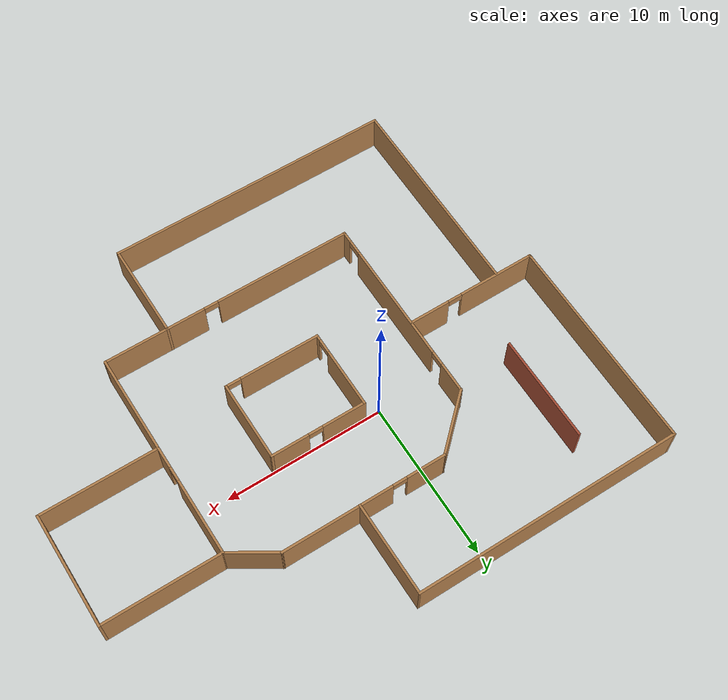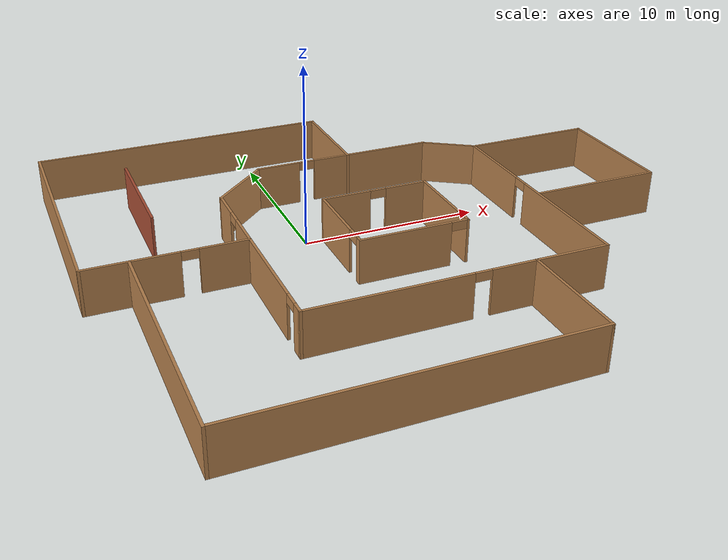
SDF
<?xml version='1.0'?>
<sdf version='1.7'>
  <model name='rs1_floor_plan_2'>
    <pose>3.48266 -2.61019 0 0 -0 0</pose>
    <link name='Wall_1'>
      <pose>8.51734 -0.714811 0 0 -0 -1.5708</pose>
      <visual name='Wall_1_Visual_0'>
        <pose>-4.28666 0 1.25 0 -0 0</pose>
        <geometry>
          <box>
            <size>4.92668 0.15 2.5</size>
          </box>
        </geometry>
        <material>
          <script>
            <uri>file://media/materials/scripts/gazebo.material</uri>
            <name>Gazebo/Wood</name>
          </script>
          <ambient>1 1 1 1</ambient>
        </material>
        <meta>
          <layer>0</layer>
        </meta>
      </visual>
      <collision name='Wall_1_Collision_0'>
        <geometry>
          <box>
            <size>4.92668 0.15 2.5</size>
          </box>
        </geometry>
        <pose>-4.28666 0 1.25 0 -0 0</pose>
      </collision>
      <visual name='Wall_1_Visual_1'>
        <pose>2.91334 0 1.25 0 -0 0</pose>
        <geometry>
          <box>
            <size>7.67333 0.15 2.5</size>
          </box>
        </geometry>
        <material>
          <script>
            <uri>file://media/materials/scripts/gazebo.material</uri>
            <name>Gazebo/Wood</name>
          </script>
          <ambient>1 1 1 1</ambient>
        </material>
        <meta>
          <layer>0</layer>
        </meta>
      </visual>
      <collision name='Wall_1_Collision_1'>
        <geometry>
          <box>
            <size>7.67333 0.15 2.5</size>
          </box>
        </geometry>
        <pose>2.91334 0 1.25 0 -0 0</pose>
      </collision>
      <visual name='Wall_1_Visual_2'>
        <pose>-1.37332 0 2.25 0 -0 0</pose>
        <geometry>
          <box>
            <size>0.9 0.15 0.5</size>
          </box>
        </geometry>
        <material>
          <script>
            <uri>file://media/materials/scripts/gazebo.material</uri>
            <name>Gazebo/Wood</name>
          </script>
          <ambient>1 1 1 1</ambient>
        </material>
        <meta>
          <layer>0</layer>
        </meta>
      </visual>
      <collision name='Wall_1_Collision_2'>
        <geometry>
          <box>
            <size>0.9 0.15 0.5</size>
          </box>
        </geometry>
        <pose>-1.37332 0 2.25 0 -0 0</pose>
      </collision>
    </link>
    <link name='Wall_11'>
      <pose>-11.6939 -0.210359 0 0 -0 3.14159</pose>
      <visual name='Wall_11_Visual_0'>
        <pose>-2.93535 0 1.25 0 -0 0</pose>
        <geometry>
          <box>
            <size>2.6293 0.15 2.5</size>
          </box>
        </geometry>
        <material>
          <script>
            <uri>file://media/materials/scripts/gazebo.material</uri>
            <name>Gazebo/Wood</name>
          </script>
          <ambient>1 1 1 1</ambient>
        </material>
        <meta>
          <layer>0</layer>
        </meta>
      </visual>
      <collision name='Wall_11_Collision_0'>
        <geometry>
          <box>
            <size>2.6293 0.15 2.5</size>
          </box>
        </geometry>
        <pose>-2.93535 0 1.25 0 -0 0</pose>
      </collision>
      <visual name='Wall_11_Visual_1'>
        <pose>1.76465 0 1.25 0 -0 0</pose>
        <geometry>
          <box>
            <size>4.9707 0.15 2.5</size>
          </box>
        </geometry>
        <material>
          <script>
            <uri>file://media/materials/scripts/gazebo.material</uri>
            <name>Gazebo/Wood</name>
          </script>
          <ambient>1 1 1 1</ambient>
        </material>
        <meta>
          <layer>0</layer>
        </meta>
      </visual>
      <collision name='Wall_11_Collision_1'>
        <geometry>
          <box>
            <size>4.9707 0.15 2.5</size>
          </box>
        </geometry>
        <pose>1.76465 0 1.25 0 -0 0</pose>
      </collision>
      <visual name='Wall_11_Visual_2'>
        <pose>-1.1707 0 2.25 0 -0 0</pose>
        <geometry>
          <box>
            <size>0.9 0.15 0.5</size>
          </box>
        </geometry>
        <material>
          <script>
            <uri>file://media/materials/scripts/gazebo.material</uri>
            <name>Gazebo/Wood</name>
          </script>
          <ambient>1 1 1 1</ambient>
        </material>
        <meta>
          <layer>0</layer>
        </meta>
      </visual>
      <collision name='Wall_11_Collision_2'>
        <geometry>
          <box>
            <size>0.9 0.15 0.5</size>
          </box>
        </geometry>
        <pose>-1.1707 0 2.25 0 -0 0</pose>
      </collision>
    </link>
    <link name='Wall_12'>
      <collision name='Wall_12_Collision'>
        <geometry>
          <box>
            <size>13.75 0.15 2.5</size>
          </box>
        </geometry>
        <pose>0 0 1.25 0 -0 0</pose>
      </collision>
      <visual name='Wall_12_Visual'>
        <pose>0 0 1.25 0 -0 0</pose>
        <geometry>
          <box>
            <size>13.75 0.15 2.5</size>
          </box>
        </geometry>
        <material>
          <script>
            <uri>file://media/materials/scripts/gazebo.material</uri>
            <name>Gazebo/Wood</name>
          </script>
          <ambient>1 1 1 1</ambient>
        </material>
        <meta>
          <layer>0</layer>
        </meta>
      </visual>
      <pose>-15.8689 6.58964 0 0 -0 1.5708</pose>
    </link>
    <link name='Wall_13'>
      <collision name='Wall_13_Collision'>
        <geometry>
          <box>
            <size>17 0.15 2.5</size>
          </box>
        </geometry>
        <pose>0 0 1.25 0 -0 0</pose>
      </collision>
      <visual name='Wall_13_Visual'>
        <pose>0 0 1.25 0 -0 0</pose>
        <geometry>
          <box>
            <size>17 0.15 2.5</size>
          </box>
        </geometry>
        <material>
          <script>
            <uri>file://media/materials/scripts/gazebo.material</uri>
            <name>Gazebo/Wood</name>
          </script>
          <ambient>1 1 1 1</ambient>
        </material>
        <meta>
          <layer>0</layer>
        </meta>
      </visual>
      <pose>-7.44387 13.3896 0 0 -0 0</pose>
    </link>
    <link name='Wall_14'>
      <collision name='Wall_14_Collision'>
        <geometry>
          <box>
            <size>5.91225 0.15 2.5</size>
          </box>
        </geometry>
        <pose>0 0 1.25 0 -0 0</pose>
      </collision>
      <visual name='Wall_14_Visual'>
        <pose>0 0 1.25 0 -0 0</pose>
        <geometry>
          <box>
            <size>5.91225 0.15 2.5</size>
          </box>
        </geometry>
        <material>
          <script>
            <uri>file://media/materials/scripts/gazebo.material</uri>
            <name>Gazebo/Wood</name>
          </script>
          <ambient>1 1 1 1</ambient>
        </material>
        <meta>
          <layer>0</layer>
        </meta>
      </visual>
      <pose>0.987578 10.5085 0 0 -0 -1.56856</pose>
    </link>
    <link name='Wall_16'>
      <collision name='Wall_16_Collision'>
        <geometry>
          <box>
            <size>7.5 0.15 2.5</size>
          </box>
        </geometry>
        <pose>0 0 1.25 0 -0 0</pose>
      </collision>
      <visual name='Wall_16_Visual'>
        <pose>0 0 1.25 0 -0 0</pose>
        <geometry>
          <box>
            <size>7.5 0.15 2.5</size>
          </box>
        </geometry>
        <material>
          <script>
            <uri>file://media/materials/scripts/gazebo.material</uri>
            <name>Gazebo/Wood</name>
          </script>
          <ambient>1 1 1 1</ambient>
        </material>
        <meta>
          <layer>0</layer>
        </meta>
      </visual>
      <pose>12.1939 5.958 0 0 -0 0</pose>
    </link>
    <link name='Wall_17'>
      <collision name='Wall_17_Collision'>
        <geometry>
          <box>
            <size>7.25 0.15 2.5</size>
          </box>
        </geometry>
        <pose>0 0 1.25 0 -0 0</pose>
      </collision>
      <visual name='Wall_17_Visual'>
        <pose>0 0 1.25 0 -0 0</pose>
        <geometry>
          <box>
            <size>7.25 0.15 2.5</size>
          </box>
        </geometry>
        <material>
          <script>
            <uri>file://media/materials/scripts/gazebo.material</uri>
            <name>Gazebo/Wood</name>
          </script>
          <ambient>1 1 1 1</ambient>
        </material>
        <meta>
          <layer>0</layer>
        </meta>
      </visual>
      <pose>15.8689 2.408 0 0 -0 -1.5708</pose>
    </link>
    <link name='Wall_18'>
      <collision name='Wall_18_Collision'>
        <geometry>
          <box>
            <size>7.5 0.15 2.5</size>
          </box>
        </geometry>
        <pose>0 0 1.25 0 -0 0</pose>
      </collision>
      <visual name='Wall_18_Visual'>
        <pose>0 0 1.25 0 -0 0</pose>
        <geometry>
          <box>
            <size>7.5 0.15 2.5</size>
          </box>
        </geometry>
        <material>
          <script>
            <uri>file://media/materials/scripts/gazebo.material</uri>
            <name>Gazebo/Wood</name>
          </script>
          <ambient>1 1 1 1</ambient>
        </material>
        <meta>
          <layer>0</layer>
        </meta>
      </visual>
      <pose>12.1939 -1.142 0 0 -0 3.14159</pose>
    </link>
    <link name='Wall_2'>
      <pose>0.517338 -7.38981 0 0 -0 3.14159</pose>
      <visual name='Wall_2_Visual_0'>
        <pose>-4.8168 0 1.25 0 -0 0</pose>
        <geometry>
          <box>
            <size>6.5164 0.15 2.5</size>
          </box>
        </geometry>
        <material>
          <script>
            <uri>file://media/materials/scripts/gazebo.material</uri>
            <name>Gazebo/Wood</name>
          </script>
          <ambient>1 1 1 1</ambient>
        </material>
        <meta>
          <layer>0</layer>
        </meta>
      </visual>
      <collision name='Wall_2_Collision_0'>
        <geometry>
          <box>
            <size>6.5164 0.15 2.5</size>
          </box>
        </geometry>
        <pose>-4.8168 0 1.25 0 -0 0</pose>
      </collision>
      <visual name='Wall_2_Visual_1'>
        <pose>3.7082 0 1.25 0 -0 0</pose>
        <geometry>
          <box>
            <size>8.7336 0.15 2.5</size>
          </box>
        </geometry>
        <material>
          <script>
            <uri>file://media/materials/scripts/gazebo.material</uri>
            <name>Gazebo/Wood</name>
          </script>
          <ambient>1 1 1 1</ambient>
        </material>
        <meta>
          <layer>0</layer>
        </meta>
      </visual>
      <collision name='Wall_2_Collision_1'>
        <geometry>
          <box>
            <size>8.7336 0.15 2.5</size>
          </box>
        </geometry>
        <pose>3.7082 0 1.25 0 -0 0</pose>
      </collision>
      <visual name='Wall_2_Visual_2'>
        <pose>-1.1086 0 2.25 0 -0 0</pose>
        <geometry>
          <box>
            <size>0.9 0.15 0.5</size>
          </box>
        </geometry>
        <material>
          <script>
            <uri>file://media/materials/scripts/gazebo.material</uri>
            <name>Gazebo/Wood</name>
          </script>
          <ambient>1 1 1 1</ambient>
        </material>
        <meta>
          <layer>0</layer>
        </meta>
      </visual>
      <collision name='Wall_2_Collision_2'>
        <geometry>
          <box>
            <size>0.9 0.15 0.5</size>
          </box>
        </geometry>
        <pose>-1.1086 0 2.25 0 -0 0</pose>
      </collision>
    </link>
    <link name='Wall_20'>
      <collision name='Wall_20_Collision'>
        <geometry>
          <box>
            <size>4.25366 0.15 2.5</size>
          </box>
        </geometry>
        <pose>0 0 1.25 0 -0 0</pose>
      </collision>
      <visual name='Wall_20_Visual'>
        <pose>0 0 1.25 0 -0 0</pose>
        <geometry>
          <box>
            <size>4.25366 0.15 2.5</size>
          </box>
        </geometry>
        <material>
          <script>
            <uri>file://media/materials/scripts/gazebo.material</uri>
            <name>Gazebo/Wood</name>
          </script>
          <ambient>1 1 1 1</ambient>
        </material>
        <meta>
          <layer>0</layer>
        </meta>
      </visual>
      <pose>-5.98266 6.23019 0 0 -0 0.750929</pose>
    </link>
    <link name='Wall_21'>
      <pose>0.702338 7.63019 0 0 -0 0</pose>
      <visual name='Wall_21_Visual_0'>
        <pose>-3.9907 0 1.25 0 -0 0</pose>
        <geometry>
          <box>
            <size>2.5386 0.15 2.5</size>
          </box>
        </geometry>
        <material>
          <script>
            <uri>file://media/materials/scripts/gazebo.material</uri>
            <name>Gazebo/Wood</name>
          </script>
          <ambient>1 1 1 1</ambient>
        </material>
        <meta>
          <layer>0</layer>
        </meta>
      </visual>
      <collision name='Wall_21_Collision_0'>
        <geometry>
          <box>
            <size>2.5386 0.15 2.5</size>
          </box>
        </geometry>
        <pose>-3.9907 0 1.25 0 -0 0</pose>
      </collision>
      <visual name='Wall_21_Visual_1'>
        <pose>1.7193 0 1.25 0 -0 0</pose>
        <geometry>
          <box>
            <size>7.0814 0.15 2.5</size>
          </box>
        </geometry>
        <material>
          <script>
            <uri>file://media/materials/scripts/gazebo.material</uri>
            <name>Gazebo/Wood</name>
          </script>
          <ambient>1 1 1 1</ambient>
        </material>
        <meta>
          <layer>0</layer>
        </meta>
      </visual>
      <collision name='Wall_21_Collision_1'>
        <geometry>
          <box>
            <size>7.0814 0.15 2.5</size>
          </box>
        </geometry>
        <pose>1.7193 0 1.25 0 -0 0</pose>
      </collision>
      <visual name='Wall_21_Visual_2'>
        <pose>-2.2714 0 2.25 0 -0 0</pose>
        <geometry>
          <box>
            <size>0.9 0.15 0.5</size>
          </box>
        </geometry>
        <material>
          <script>
            <uri>file://media/materials/scripts/gazebo.material</uri>
            <name>Gazebo/Wood</name>
          </script>
          <ambient>1 1 1 1</ambient>
        </material>
        <meta>
          <layer>0</layer>
        </meta>
      </visual>
      <collision name='Wall_21_Collision_2'>
        <geometry>
          <box>
            <size>0.9 0.15 0.5</size>
          </box>
        </geometry>
        <pose>-2.2714 0 2.25 0 -0 0</pose>
      </collision>
    </link>
    <link name='Wall_22'>
      <collision name='Wall_22_Collision'>
        <geometry>
          <box>
            <size>3.26774 0.15 2.5</size>
          </box>
        </geometry>
        <pose>0 0 1.25 0 -0 0</pose>
      </collision>
      <visual name='Wall_22_Visual'>
        <pose>0 0 1.25 0 -0 0</pose>
        <geometry>
          <box>
            <size>3.26774 0.15 2.5</size>
          </box>
        </geometry>
        <material>
          <script>
            <uri>file://media/materials/scripts/gazebo.material</uri>
            <name>Gazebo/Wood</name>
          </script>
          <ambient>1 1 1 1</ambient>
        </material>
        <meta>
          <layer>0</layer>
        </meta>
      </visual>
      <pose>7.2031 6.79409 0 0 -0 -0.566075</pose>
    </link>
    <link name='Wall_24'>
      <collision name='Wall_24_Collision'>
        <geometry>
          <box>
            <size>6.75 0.15 2.5</size>
          </box>
        </geometry>
        <pose>0 0 1.25 0 -0 0</pose>
      </collision>
      <visual name='Wall_24_Visual'>
        <pose>0 0 1.25 0 -0 0</pose>
        <geometry>
          <box>
            <size>6.75 0.15 2.5</size>
          </box>
        </geometry>
        <material>
          <script>
            <uri>file://media/materials/scripts/gazebo.material</uri>
            <name>Gazebo/Bricks</name>
          </script>
          <ambient>1 1 1 1</ambient>
        </material>
        <meta>
          <layer>0</layer>
        </meta>
      </visual>
      <pose>-11.443 7.26025 0 0 -0 -1.5708</pose>
    </link>
    <link name='Wall_26'>
      <collision name='Wall_26_Collision'>
        <geometry>
          <box>
            <size>13.25 0.15 2.5</size>
          </box>
        </geometry>
        <pose>0 0 1.25 0 -0 0</pose>
      </collision>
      <visual name='Wall_26_Visual'>
        <pose>0 0 1.25 0 -0 0</pose>
        <geometry>
          <box>
            <size>13.25 0.15 2.5</size>
          </box>
        </geometry>
        <material>
          <script>
            <uri>file://media/materials/scripts/gazebo.material</uri>
            <name>Gazebo/Wood</name>
          </script>
          <ambient>1 1 1 1</ambient>
        </material>
        <meta>
          <layer>0</layer>
        </meta>
      </visual>
      <pose>-13.4827 -6.83981 0 0 -0 -1.5708</pose>
    </link>
    <link name='Wall_27'>
      <collision name='Wall_27_Collision'>
        <geometry>
          <box>
            <size>18.15 0.15 2.5</size>
          </box>
        </geometry>
        <pose>0 0 1.25 0 -0 0</pose>
      </collision>
      <visual name='Wall_27_Visual'>
        <pose>0 0 1.25 0 -0 0</pose>
        <geometry>
          <box>
            <size>18.15 0.15 2.5</size>
          </box>
        </geometry>
        <material>
          <script>
            <uri>file://media/materials/scripts/gazebo.material</uri>
            <name>Gazebo/Wood</name>
          </script>
          <ambient>1 1 1 1</ambient>
        </material>
        <meta>
          <layer>0</layer>
        </meta>
      </visual>
      <pose>-4.48266 -13.3898 0 0 -0 0</pose>
    </link>
    <link name='Wall_28'>
      <collision name='Wall_28_Collision'>
        <geometry>
          <box>
            <size>6.15 0.15 2.5</size>
          </box>
        </geometry>
        <pose>0 0 1.25 0 -0 0</pose>
      </collision>
      <visual name='Wall_28_Visual'>
        <pose>0 0 1.25 0 -0 0</pose>
        <geometry>
          <box>
            <size>6.15 0.15 2.5</size>
          </box>
        </geometry>
        <material>
          <script>
            <uri>file://media/materials/scripts/gazebo.material</uri>
            <name>Gazebo/Wood</name>
          </script>
          <ambient>1 1 1 1</ambient>
        </material>
        <meta>
          <layer>0</layer>
        </meta>
      </visual>
      <pose>4.51734 -10.3898 0 0 -0 1.5708</pose>
    </link>
    <link name='Wall_3'>
      <pose>-7.48266 -1.27981 0 0 -0 1.5708</pose>
      <visual name='Wall_3_Visual_0'>
        <pose>-5.80672 0 1.25 0 -0 0</pose>
        <geometry>
          <box>
            <size>0.756566 0.15 2.5</size>
          </box>
        </geometry>
        <material>
          <script>
            <uri>file://media/materials/scripts/gazebo.material</uri>
            <name>Gazebo/Wood</name>
          </script>
          <ambient>1 1 1 1</ambient>
        </material>
        <meta>
          <layer>0</layer>
        </meta>
      </visual>
      <collision name='Wall_3_Collision_0'>
        <geometry>
          <box>
            <size>0.756566 0.15 2.5</size>
          </box>
        </geometry>
        <pose>-5.80672 0 1.25 0 -0 0</pose>
      </collision>
      <visual name='Wall_3_Visual_1'>
        <pose>-0.606396 0 1.25 0 -0 0</pose>
        <geometry>
          <box>
            <size>7.84408 0.15 2.5</size>
          </box>
        </geometry>
        <material>
          <script>
            <uri>file://media/materials/scripts/gazebo.material</uri>
            <name>Gazebo/Wood</name>
          </script>
          <ambient>1 1 1 1</ambient>
        </material>
        <meta>
          <layer>0</layer>
        </meta>
      </visual>
      <collision name='Wall_3_Collision_1'>
        <geometry>
          <box>
            <size>7.84408 0.15 2.5</size>
          </box>
        </geometry>
        <pose>-0.606396 0 1.25 0 -0 0</pose>
      </collision>
      <visual name='Wall_3_Visual_2'>
        <pose>5.20032 0 1.25 0 -0 0</pose>
        <geometry>
          <box>
            <size>1.96936 0.15 2.5</size>
          </box>
        </geometry>
        <material>
          <script>
            <uri>file://media/materials/scripts/gazebo.material</uri>
            <name>Gazebo/Wood</name>
          </script>
          <ambient>1 1 1 1</ambient>
        </material>
        <meta>
          <layer>0</layer>
        </meta>
      </visual>
      <collision name='Wall_3_Collision_2'>
        <geometry>
          <box>
            <size>1.96936 0.15 2.5</size>
          </box>
        </geometry>
        <pose>5.20032 0 1.25 0 -0 0</pose>
      </collision>
      <visual name='Wall_3_Visual_3'>
        <pose>-4.97843 0 2.25 0 -0 0</pose>
        <geometry>
          <box>
            <size>0.9 0.15 0.5</size>
          </box>
        </geometry>
        <material>
          <script>
            <uri>file://media/materials/scripts/gazebo.material</uri>
            <name>Gazebo/Wood</name>
          </script>
          <ambient>1 1 1 1</ambient>
        </material>
        <meta>
          <layer>0</layer>
        </meta>
      </visual>
      <collision name='Wall_3_Collision_3'>
        <geometry>
          <box>
            <size>0.9 0.15 0.5</size>
          </box>
        </geometry>
        <pose>-4.97843 0 2.25 0 -0 0</pose>
      </collision>
      <visual name='Wall_3_Visual_4'>
        <pose>3.76564 0 2.25 0 -0 0</pose>
        <geometry>
          <box>
            <size>0.9 0.15 0.5</size>
          </box>
        </geometry>
        <material>
          <script>
            <uri>file://media/materials/scripts/gazebo.material</uri>
            <name>Gazebo/Wood</name>
          </script>
          <ambient>1 1 1 1</ambient>
        </material>
        <meta>
          <layer>0</layer>
        </meta>
      </visual>
      <collision name='Wall_3_Collision_4'>
        <geometry>
          <box>
            <size>0.9 0.15 0.5</size>
          </box>
        </geometry>
        <pose>3.76564 0 2.25 0 -0 0</pose>
      </collision>
    </link>
    <link name='Wall_5'>
      <pose>-2.48266 0.110189 0 0 -0 -1.5708</pose>
      <visual name='Wall_5_Visual_0'>
        <pose>-0.647016 0 1.25 0 -0 0</pose>
        <geometry>
          <box>
            <size>3.85597 0.15 2.5</size>
          </box>
        </geometry>
        <material>
          <script>
            <uri>file://media/materials/scripts/gazebo.material</uri>
            <name>Gazebo/Wood</name>
          </script>
          <ambient>1 1 1 1</ambient>
        </material>
        <meta>
          <layer>0</layer>
        </meta>
      </visual>
      <collision name='Wall_5_Collision_0'>
        <geometry>
          <box>
            <size>3.85597 0.15 2.5</size>
          </box>
        </geometry>
        <pose>-0.647016 0 1.25 0 -0 0</pose>
      </collision>
      <visual name='Wall_5_Visual_1'>
        <pose>2.37798 0 1.25 0 -0 0</pose>
        <geometry>
          <box>
            <size>0.394033 0.15 2.5</size>
          </box>
        </geometry>
        <material>
          <script>
            <uri>file://media/materials/scripts/gazebo.material</uri>
            <name>Gazebo/Wood</name>
          </script>
          <ambient>1 1 1 1</ambient>
        </material>
        <meta>
          <layer>0</layer>
        </meta>
      </visual>
      <collision name='Wall_5_Collision_1'>
        <geometry>
          <box>
            <size>0.394033 0.15 2.5</size>
          </box>
        </geometry>
        <pose>2.37798 0 1.25 0 -0 0</pose>
      </collision>
      <visual name='Wall_5_Visual_2'>
        <pose>1.73097 0 2.25 0 -0 0</pose>
        <geometry>
          <box>
            <size>0.9 0.15 0.5</size>
          </box>
        </geometry>
        <material>
          <script>
            <uri>file://media/materials/scripts/gazebo.material</uri>
            <name>Gazebo/Wood</name>
          </script>
          <ambient>1 1 1 1</ambient>
        </material>
        <meta>
          <layer>0</layer>
        </meta>
      </visual>
      <collision name='Wall_5_Collision_2'>
        <geometry>
          <box>
            <size>0.9 0.15 0.5</size>
          </box>
        </geometry>
        <pose>1.73097 0 2.25 0 -0 0</pose>
      </collision>
    </link>
    <link name='Wall_6'>
      <pose>0.517338 -2.38981 0 0 -0 0</pose>
      <visual name='Wall_6_Visual_0'>
        <pose>-0.506158 0 1.25 0 -0 0</pose>
        <geometry>
          <box>
            <size>5.13769 0.15 2.5</size>
          </box>
        </geometry>
        <material>
          <script>
            <uri>file://media/materials/scripts/gazebo.material</uri>
            <name>Gazebo/Wood</name>
          </script>
          <ambient>1 1 1 1</ambient>
        </material>
        <meta>
          <layer>0</layer>
        </meta>
      </visual>
      <collision name='Wall_6_Collision_0'>
        <geometry>
          <box>
            <size>5.13769 0.15 2.5</size>
          </box>
        </geometry>
        <pose>-0.506158 0 1.25 0 -0 0</pose>
      </collision>
      <visual name='Wall_6_Visual_1'>
        <pose>3.01884 0 1.25 0 -0 0</pose>
        <geometry>
          <box>
            <size>0.112315 0.15 2.5</size>
          </box>
        </geometry>
        <material>
          <script>
            <uri>file://media/materials/scripts/gazebo.material</uri>
            <name>Gazebo/Wood</name>
          </script>
          <ambient>1 1 1 1</ambient>
        </material>
        <meta>
          <layer>0</layer>
        </meta>
      </visual>
      <collision name='Wall_6_Collision_1'>
        <geometry>
          <box>
            <size>0.112315 0.15 2.5</size>
          </box>
        </geometry>
        <pose>3.01884 0 1.25 0 -0 0</pose>
      </collision>
      <visual name='Wall_6_Visual_2'>
        <pose>2.51268 0 2.25 0 -0 0</pose>
        <geometry>
          <box>
            <size>0.9 0.15 0.5</size>
          </box>
        </geometry>
        <material>
          <script>
            <uri>file://media/materials/scripts/gazebo.material</uri>
            <name>Gazebo/Wood</name>
          </script>
          <ambient>1 1 1 1</ambient>
        </material>
        <meta>
          <layer>0</layer>
        </meta>
      </visual>
      <collision name='Wall_6_Collision_2'>
        <geometry>
          <box>
            <size>0.9 0.15 0.5</size>
          </box>
        </geometry>
        <pose>2.51268 0 2.25 0 -0 0</pose>
      </collision>
    </link>
    <link name='Wall_7'>
      <collision name='Wall_7_Collision'>
        <geometry>
          <box>
            <size>5.15 0.15 2.5</size>
          </box>
        </geometry>
        <pose>0 0 1.25 0 -0 0</pose>
      </collision>
      <visual name='Wall_7_Visual'>
        <pose>0 0 1.25 0 -0 0</pose>
        <geometry>
          <box>
            <size>5.15 0.15 2.5</size>
          </box>
        </geometry>
        <material>
          <script>
            <uri>file://media/materials/scripts/gazebo.material</uri>
            <name>Gazebo/Wood</name>
          </script>
          <ambient>1 1 1 1</ambient>
        </material>
        <meta>
          <layer>0</layer>
        </meta>
      </visual>
      <pose>3.51734 0.110189 0 0 -0 1.5708</pose>
    </link>
    <link name='Wall_8'>
      <pose>0.517338 2.61019 0 0 -0 3.14159</pose>
      <visual name='Wall_8_Visual_0'>
        <pose>-1.85331 0 1.25 0 -0 0</pose>
        <geometry>
          <box>
            <size>2.44338 0.15 2.5</size>
          </box>
        </geometry>
        <material>
          <script>
            <uri>file://media/materials/scripts/gazebo.material</uri>
            <name>Gazebo/Wood</name>
          </script>
          <ambient>1 1 1 1</ambient>
        </material>
        <meta>
          <layer>0</layer>
        </meta>
      </visual>
      <collision name='Wall_8_Collision_0'>
        <geometry>
          <box>
            <size>2.44338 0.15 2.5</size>
          </box>
        </geometry>
        <pose>-1.85331 0 1.25 0 -0 0</pose>
      </collision>
      <visual name='Wall_8_Visual_1'>
        <pose>1.67169 0 1.25 0 -0 0</pose>
        <geometry>
          <box>
            <size>2.80662 0.15 2.5</size>
          </box>
        </geometry>
        <material>
          <script>
            <uri>file://media/materials/scripts/gazebo.material</uri>
            <name>Gazebo/Wood</name>
          </script>
          <ambient>1 1 1 1</ambient>
        </material>
        <meta>
          <layer>0</layer>
        </meta>
      </visual>
      <collision name='Wall_8_Collision_1'>
        <geometry>
          <box>
            <size>2.80662 0.15 2.5</size>
          </box>
        </geometry>
        <pose>1.67169 0 1.25 0 -0 0</pose>
      </collision>
      <visual name='Wall_8_Visual_2'>
        <pose>-0.181616 0 2.25 0 -0 0</pose>
        <geometry>
          <box>
            <size>0.9 0.15 0.5</size>
          </box>
        </geometry>
        <material>
          <script>
            <uri>file://media/materials/scripts/gazebo.material</uri>
            <name>Gazebo/Wood</name>
          </script>
          <ambient>1 1 1 1</ambient>
        </material>
        <meta>
          <layer>0</layer>
        </meta>
      </visual>
      <collision name='Wall_8_Collision_2'>
        <geometry>
          <box>
            <size>0.9 0.15 0.5</size>
          </box>
        </geometry>
        <pose>-0.181616 0 2.25 0 -0 0</pose>
      </collision>
    </link>
    <static>1</static>
  </model>
</sdf>
